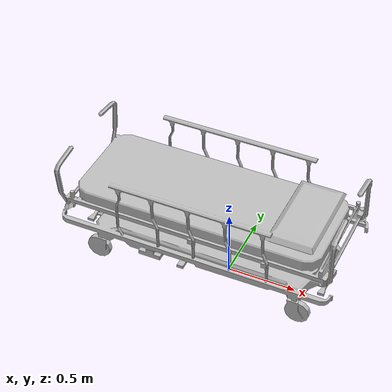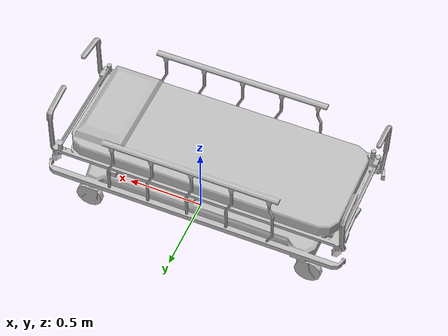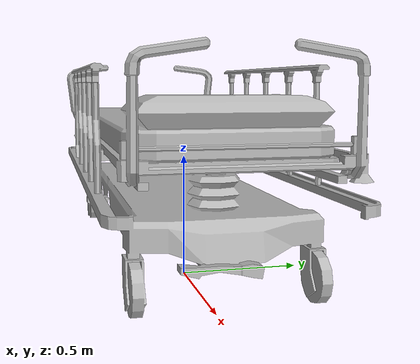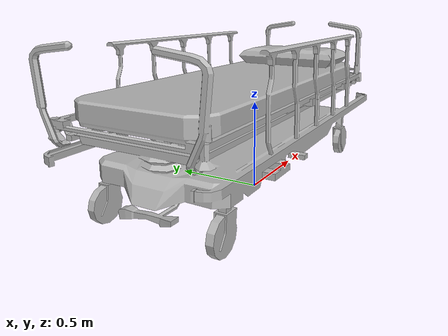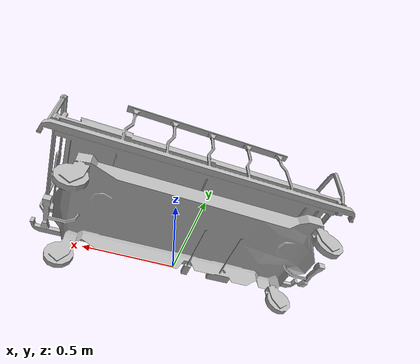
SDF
<?xml version="1.0"?>

<sdf version='1.6'>
  <model name="TrolleyBed_ReadOnly">
   <plugin name="readonly_blockade" filename="libreadonly_blockade.so">
      <!-- Update rate (hz) at which robot_state is published -->
      <update_rate>1</update_rate>
    </plugin>

    <plugin name="trolleybed_diff_controller" filename="libgazebo_ros_diff_drive.so">
      <always_on>true</always_on>
      <!-- Update rate -->
      <update_rate>100.0</update_rate>
      <!-- Number of wheel pairs -->
      <num_wheel_pairs>1</num_wheel_pairs>
      <!-- wheels -->
      <left_joint>joint_tire_left</left_joint>
      <right_joint>joint_tire_right</right_joint>
      <!-- kinematics -->
      <wheel_separation>1.2</wheel_separation>
      <wheel_separation>1.2</wheel_separation>
      <wheel_diameter>0.64</wheel_diameter>
      <wheel_diameter>0.64</wheel_diameter>
      <!-- limits -->
      <max_wheel_torque>150</max_wheel_torque>
      <max_wheel_torque>150</max_wheel_torque>
      <max_wheel_torque>150</max_wheel_torque>
      <max_wheel_torque>150</max_wheel_torque>
      <max_wheel_acceleration>0.5</max_wheel_acceleration>
      <max_wheel_acceleration>0.5</max_wheel_acceleration>
      <max_wheel_acceleration>0.5</max_wheel_acceleration>
      <max_wheel_acceleration>0.5</max_wheel_acceleration>
      <!-- output -->
      <publish_odom>true</publish_odom>
      <publish_odom_tf>true</publish_odom_tf>
      <publish_wheel_tf>true</publish_wheel_tf>
      <odometry_frame>odom</odometry_frame>
      <robot_base_frame>base_footprint</robot_base_frame>
    </plugin>

    <plugin name="ignition::gazebo::systems::DiffDrive" filename="/libignition-gazebo-diff-drive-system.so">
      <always_on>true</always_on>
      <update_rate>100.0</update_rate>
      <num_wheel_pairs>2</num_wheel_pairs>
      <left_joint>joint_tire_left</left_joint>
      <right_joint>joint_tire_right</right_joint>
      <wheel_separation>1.2</wheel_separation>
      <wheel_separation>1.2</wheel_separation>
      <wheel_diameter>0.64</wheel_diameter>
      <wheel_diameter>0.64</wheel_diameter>
      <max_wheel_torque>150</max_wheel_torque>
      <max_wheel_torque>150</max_wheel_torque>
      <max_wheel_torque>150</max_wheel_torque>
      <max_wheel_torque>150</max_wheel_torque>
      <max_wheel_acceleration>0.5</max_wheel_acceleration>
      <max_wheel_acceleration>0.5</max_wheel_acceleration>
      <max_wheel_acceleration>0.5</max_wheel_acceleration>
      <max_wheel_acceleration>0.5</max_wheel_acceleration>
      <publish_odom>true</publish_odom>
      <publish_odom_tf>true</publish_odom_tf>
      <publish_wheel_tf>true</publish_wheel_tf>
      <odometry_frame>odom</odometry_frame>
      <robot_base_frame>base_footprint</robot_base_frame>
    </plugin>
    <link name='base_footprint'>
      <pose frame=''>0 0 0 0 -0 0</pose>
      <inertial>
        <pose frame=''>-0.15 0 0.13 0 -0 0</pose>
        <mass>7</mass> <!-- A higher mass causes wheels to spin while attempting to turn when using DART -->
        <inertia>
          <ixx>0.0594508</ixx>
          <ixy>0</ixy>
          <ixz>-2.77556e-17</ixz>
          <iyy>0.150753</iyy>
          <iyz>0</iyz>
          <izz>0.172704</izz>
        </inertia>
      </inertial>

      <visual name="visual">
        <!-- rotate mesh to get to X-forward -->
        <pose frame=''>-0.11 0 0.071 0 -0 0</pose>
        <geometry>
          <mesh>
            <scale>1 1 1</scale>
            <uri>model://TrolleyBed/meshes/TrolleyBed.obj</uri>
          </mesh>
        </geometry>
      </visual>

      <collision name="collision">
        <pose frame=''>-0.11 0 0.151 0 -0 0</pose>
        <geometry>
          <mesh>
            <scale>0.8 0.8 0.8</scale>
            <uri>model://TrolleyBed/meshes/TrolleyBed.obj</uri>
          </mesh>
        </geometry>
      </collision>

      <collision name='base_footprint_fixed_joint_lump__base_link_collision_1'>
        <pose frame=''>-0.136 0 0.248 0 -0 0</pose>
        <geometry>
          <box>
            <size>0.375 0.268 0.034</size>
          </box>
        </geometry>
      </collision>
      <collision name='base_footprint_fixed_joint_lump__base_link_collision_2'>
        <pose frame=''>-0.279 0.169 0.106 0 -0 0</pose>
        <geometry>
          <box>
            <size>0.1 0.07 0.07</size>
          </box>
        </geometry>
      </collision>
      <collision name='base_footprint_fixed_joint_lump__base_link_collision_3'>
        <pose frame=''>-0.279 -0.169 0.106 0 -0 0</pose>
        <geometry>
          <box>
            <size>0.1 0.07 0.07</size>
          </box>
        </geometry>
      </collision>

      <collision name='base_footprint_fixed_joint_lump__left_caster_wheel_collision_4'>
        <pose frame=''>-0.3 0.169 0.04 0 -0 0</pose>
        <geometry>
          <sphere>
            <radius>0.04</radius>
          </sphere>
        </geometry>
        <surface>
          <contact>
            <ode>
              <kp>1e+08</kp>
              <min_depth>0.005</min_depth>
            </ode>
          </contact>
          <friction>
            <ode>
              <mu>0</mu>
              <mu2>0</mu2>
            </ode>
          </friction>
        </surface>
      </collision>

      <collision name='base_footprint_fixed_joint_lump__raspicam_collision_5'>
        <pose frame=''>0.05 0.085 0.245 0 -1.15192 3.1415</pose>
        <geometry>
          <box>
            <size>0.03 0.026 0.016</size>
          </box>
        </geometry>
      </collision>

      <collision name='base_footprint_fixed_joint_lump__right_caster_wheel_collision_6'>
        <pose frame=''>-0.3 -0.169 0.04 0 -0 0</pose>
        <geometry>
          <sphere>
            <radius>0.04</radius>
          </sphere>
        </geometry>
        <surface>
          <contact>
            <ode>
              <kp>1e+08</kp>
              <min_depth>0.005</min_depth>
            </ode>
          </contact>
          <friction>
            <ode>
              <mu>0</mu>
              <mu2>0</mu2>
            </ode>
          </friction>
        </surface>
      </collision>

      <collision name='base_footprint_fixed_joint_lump__sonar_0_collision_7'>
        <pose frame=''>0.01 -0.14 0.25 0 0 -1.5708</pose>
        <geometry>
          <box>
            <size>0.02 0.044 0.021</size>
          </box>
        </geometry>
        <surface>
          <contact>
            <ode/>
          </contact>
          <friction>
            <ode/>
          </friction>
        </surface>
      </collision>

      <collision name='base_footprint_fixed_joint_lump__sonar_1_collision_8'>
        <pose frame=''>0.08 -0.07 0.25 0 -0 0.785</pose>
        <geometry>
          <box>
            <size>0.02 0.044 0.021</size>
          </box>
        </geometry>
        <surface>
          <contact>
            <ode/>
          </contact>
          <friction>
            <ode/>
          </friction>
        </surface>
      </collision>

      <collision name='base_footprint_fixed_joint_lump__sonar_2_collision_9'>
        <pose frame=''>0.08 -0.01 0.25 0 0 -0.785</pose>
        <geometry>
          <box>
            <size>0.02 0.044 0.021</size>
          </box>
        </geometry>
        <surface>
          <contact>
            <ode/>
          </contact>
          <friction>
            <ode/>
          </friction>
        </surface>
      </collision>

      <collision name='base_footprint_fixed_joint_lump__sonar_3_collision_10'>
        <pose frame=''>0.08 0.04 0.25 0 -0 0</pose>
        <geometry>
          <box>
            <size>0.02 0.044 0.021</size>
          </box>
        </geometry>
        <surface>
          <contact>
            <ode/>
          </contact>
          <friction>
            <ode/>
          </friction>
        </surface>
      </collision>

      <collision name='base_footprint_fixed_joint_lump__sonar_4_collision_11'>
        <pose frame=''>0.01 0.14 0.25 0 -0 1.5708</pose>
        <geometry>
          <box>
            <size>0.02 0.044 0.021</size>
          </box>
        </geometry>
        <surface>
          <contact>
            <ode/>
          </contact>
          <friction>
            <ode/>
          </friction>
        </surface>
      </collision>
      </link>

    <link name='left_wheel'>
      <pose frame=''>0 0.163 0.1 0 -0 1.5708</pose>
      <inertial>
        <pose frame=''>0 0 0 3.14159 1.57079 3.14159</pose>
        <mass>3.34</mass>
        <inertia>
          <ixx>0.00904583</ixx>
          <ixy>0</ixy>
          <ixz>0</ixz>
          <iyy>0.00904583</iyy>
          <iyz>0</iyz>
          <izz>0.0167</izz>
        </inertia>
      </inertial>
      <collision name='left_wheel_collision'>
        <pose frame=''>0 0 0 3.14159 1.57079 3.14159</pose>
        <geometry>
          <sphere>
            <radius>0.1</radius>
          </sphere>
        </geometry>
        <surface>
          <contact>
            <ode>
              <kp>10000000.0</kp>
              <kd>1.0</kd>
            </ode>
          </contact>
          <friction>
            <ode>
              <mu>1</mu>
              <mu2>1</mu2>
              <fdir1>0 0 1</fdir1>
            </ode>
          </friction>
        </surface>
      </collision>
      <gravity>1</gravity>
      <!--velocity_decay/-->
    </link>

    <joint name='joint_tire_left' type='revolute'>
      <child>left_wheel</child>
      <parent>base_footprint</parent>
      <axis>
        <xyz>0 1 0</xyz>
        <use_parent_model_frame>true</use_parent_model_frame>
      </axis>
      <physics>
        <ode>
          <limit>
            <cfm>0.000000</cfm>
            <erp>0.900000</erp>
          </limit>
        </ode>
      </physics>
    </joint>

    <link name='right_wheel'>
      <pose frame=''>0 -0.163 0.1 0 -0 1.5708</pose>
      <inertial>
        <pose frame=''>0 0 0 3.14159 1.57079 3.14159</pose>
        <mass>3.34</mass>
        <inertia>
          <ixx>0.00904583</ixx>
          <ixy>0</ixy>
          <ixz>0</ixz>
          <iyy>0.00904583</iyy>
          <iyz>0</iyz>
          <izz>0.0167</izz>
        </inertia>
      </inertial>
      <collision name='right_wheel_collision'>
        <pose frame=''>0 0 0 3.14159 1.57079 3.14159</pose>
        <geometry>
          <sphere>
            <radius>0.1</radius>
          </sphere>
        </geometry>
        <surface>
          <contact>
            <ode>
              <kp>10000000.0</kp>
              <kd>1.0</kd>
            </ode>
          </contact>
          <friction>
            <ode>
              <mu>1</mu>
              <mu2>1</mu2>
              <fdir1>0 0 1</fdir1>
            </ode>
          </friction>
        </surface>
      </collision>
      <gravity>1</gravity>
      <!--velocity_decay/-->
    </link>

    <joint name='joint_tire_right' type='revolute'>
      <child>right_wheel</child>
      <parent>base_footprint</parent>
      <axis>
        <xyz>0 1 0</xyz>
        <use_parent_model_frame>true</use_parent_model_frame>
      </axis>
      <physics>
        <ode>
          <limit>
            <cfm>0.000000</cfm>
            <erp>0.900000</erp>
          </limit>
        </ode>
      </physics>
    </joint>

  </model>
</sdf>
